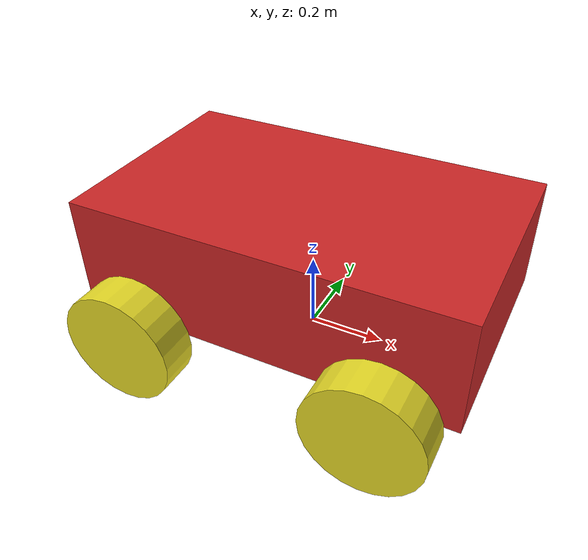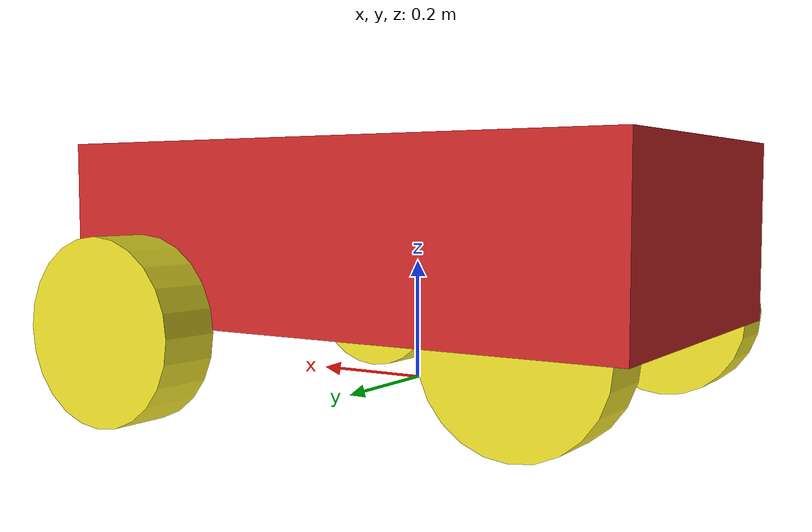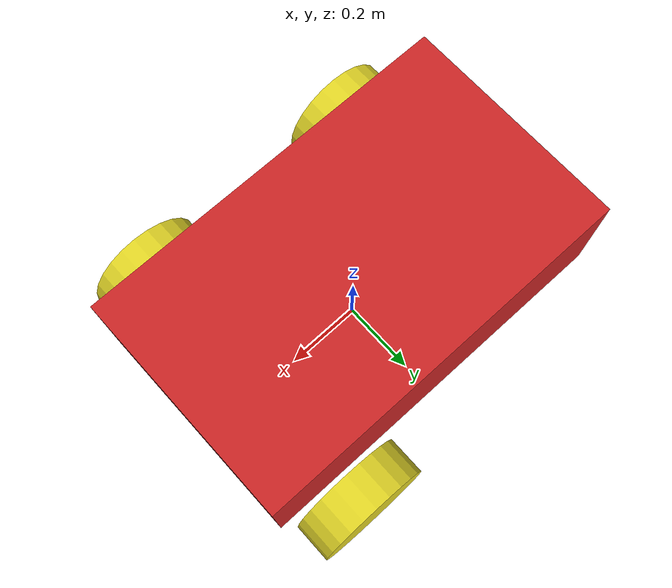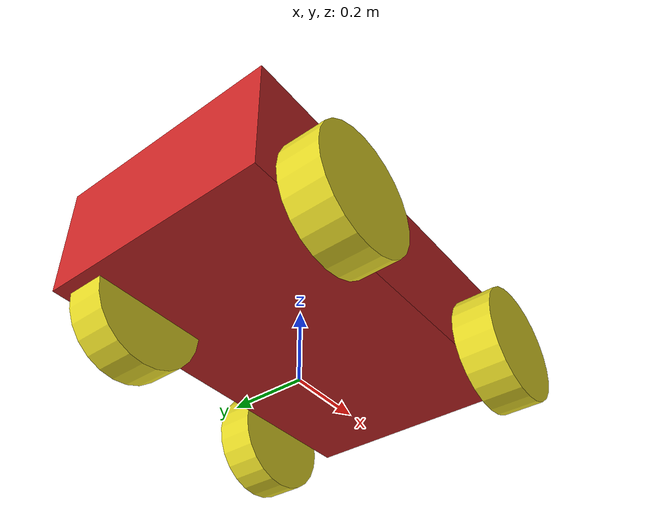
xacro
<?xml version="1.0"?>

<robot name="robot" xmlns:xacro="http://www.ros.org/wiki/xacro">

<!-- Body -->
<xacro:property name="body_link_x_dim" value="1" />
<xacro:property name="body_link_y_dim" value="0.6" />
<xacro:property name="body_link_z_dim" value="0.3" />

<!-- Wheel -->
<xacro:property name="wheel_link_radius" value="0.15" />
<xacro:property name="wheel_link_length" value="0.1" />
<xacro:property name="wheel_link_z_location" value="0.1" />

<!-- Material density -->
<xacro:property name="body_density" value="2710.0" />
<xacro:property name="wheel_density" value="2710.0" />

<!-- Pi constant -->
<xacro:property name="pi_const" value="3.14159265" />

<!-- Robod body and wheel mass -->
<xacro:property name="body_mass" value="${body_density*body_link_x_dim*body_link_y_dim*body_link_z_dim}" />
<xacro:property name="wheel_mass" value="${wheel_density*pi_const*wheel_link_radius*wheel_link_radius*wheel_link_length}" />

<!-- Moment of inertia of the whee -->
<xacro:property name="Iz_wheel" value="${0.5*wheel_mass*wheel_link_radius*wheel_link_radius}" />
<xacro:property name="I_wheel" value="${(-1.0/2.0)*wheel_mass*(2.0*wheel_link_radius*wheel_link_radius+wheel_link_length*wheel_link_length)}" />

<!-- Inertial section of wheel -->
<xacro:macro name="inertia_wheel">
    <inertial>
        <origin rpy="0 0 0" xyz="0 0 0" />
        <mass value="${wheel_mass}" />
        <inertia ixx="${I_wheel}" ixy="0" ixz="0.0" iyy="${I_wheel}" iyz="0" izz="${Iz_wheel}" />
    </inertial>
</xacro:macro>

<xacro:include filename="/home/a/robotics-lab/final-project/robotics-assignment/ros_ws/src/simple_robot_description/models/robot/robot.gazebo.xacro" />

<!-- Link and Joints -->

<link name="dummy"></link>
<joint name="dummy_joint" type='fixed'>
    <parent link="dummy" />
    <child link="body_link" />
</joint>

<link name="body_link">
    <visual>
        <geometry>
            <box size="${body_link_x_dim} ${body_link_y_dim} ${body_link_z_dim}" />
        </geometry>
        <origin rpy="0 0 0" xyz="0 0 0.25" />
    </visual>

    <collision>
        <geometry>
            <box size="${body_link_x_dim} ${body_link_y_dim} ${body_link_z_dim}" />
        </geometry>
        <origin rpy="0 0 0" xyz="0 0 0.25" />
    </collision>

    <inertial>
        <origin rpy="0 0 0" xyz="0 0 0.25" />
        <mass value="${body_mass}" />
        <inertia
        ixx="${(1/12)*body_mass*(body_link_y_dim*body_link_y_dim+body_link_z_dim*body_link_z_dim)}"
        ixy="0"
        ixz="0"
        iyy="${(1/12)*body_mass*(body_link_x_dim*body_link_x_dim+body_link_z_dim*body_link_z_dim)}"
        iyz="0"
        izz="${(1/12)*body_mass*(body_link_y_dim*body_link_y_dim+body_link_x_dim*body_link_x_dim)}"
        />
    </inertial>
</link>

<!-- Back right wheel -->
<joint name="wheel1_joint" type="continuous">
    <parent link="body_link" />
    <child link="wheel1_link" />
    <origin
        xyz="${-body_link_x_dim/2+1.2*wheel_link_radius} ${-body_link_y_dim/2-wheel_link_radius/2} ${wheel_link_z_location}"
        rpy="0 0 0"
    />
    <axis xyz="0 1 0" />
    <limit effort="1000" velocity="1000" />
    <dynamics damping="1.0" friction="1.0" />
</joint>

<link name="wheel1_link">
    <visual>
        <origin rpy="1.570795 0 0" xyz="0 0 0" />
        <geometry>
            <cylinder length="${wheel_link_length}" radius="${wheel_link_radius}" />
        </geometry>
    </visual>

    <collision>
        <origin rpy="1.570795 0 0" xyz="0 0 0" />
        <geometry>
            <cylinder length="${wheel_link_length}" radius="${wheel_link_radius}" />
        </geometry>
    </collision>

    <xacro:inertia_wheel />
</link>

<!-- Back left wheel -->
<joint name="wheel2_joint" type="continuous">
    <parent link="body_link" />
    <child link="wheel2_link" />
    <origin
        xyz="${-body_link_x_dim/2+1.2*wheel_link_radius} ${body_link_y_dim/2-wheel_link_radius/2} ${wheel_link_z_location}"
        rpy="0 0 0"
    />
    <axis xyz="0 1 0" />
    <limit effort="1000" velocity="1000" />
    <dynamics damping="1.0" friction="1.0" />
</joint>

<link name="wheel2_link">
    <visual>
        <origin rpy="1.570795 0 0" xyz="0 0 0" />
        <geometry>
            <cylinder length="${wheel_link_length}" radius="${wheel_link_radius}" />
        </geometry>
    </visual>

    <collision>
        <origin rpy="1.570795 0 0" xyz="0 0 0" />
        <geometry>
            <cylinder length="${wheel_link_length}" radius="${wheel_link_radius}" />
        </geometry>
    </collision>

    <xacro:inertia_wheel />
</link>

<!-- Front right wheel -->
<joint name="wheel3_joint" type="continuous">
    <parent link="body_link" />
    <child link="wheel3_link" />
    <origin
        xyz="${body_link_x_dim/2-1.2*wheel_link_radius} ${-body_link_y_dim/2-wheel_link_radius/2} ${wheel_link_z_location}"
        rpy="0 0 0"
    />
    <axis xyz="0 1 0" />
    <limit effort="1000" velocity="1000" />
    <dynamics damping="1.0" friction="1.0" />
</joint>

<link name="wheel3_link">
    <visual>
        <origin rpy="1.570795 0 0" xyz="0 0 0" />
        <geometry>
            <cylinder length="${wheel_link_length}" radius="${wheel_link_radius}" />
        </geometry>
    </visual>

    <collision>
        <origin rpy="1.570795 0 0" xyz="0 0 0" />
        <geometry>
            <cylinder length="${wheel_link_length}" radius="${wheel_link_radius}" />
        </geometry>
    </collision>

    <xacro:inertia_wheel />
</link>

<!-- Front left wheel -->
<joint name="wheel4_joint" type="continuous">
    <parent link="body_link" />
    <child link="wheel4_link" />
    <origin
        xyz="${body_link_x_dim/2-1.2*wheel_link_radius} ${body_link_y_dim/2+wheel_link_radius/2} ${wheel_link_z_location}"
        rpy="0 0 0"
    />
    <axis xyz="0 1 0" />
    <limit effort="1000" velocity="1000" />
    <dynamics damping="1.0" friction="1.0" />
</joint>

<link name="wheel4_link">
    <visual>
        <origin rpy="1.570795 0 0" xyz="0 0 0" />
        <geometry>
            <cylinder length="${wheel_link_length}" radius="${wheel_link_radius}" />
        </geometry>
    </visual>

    <collision>
        <origin rpy="1.570795 0 0" xyz="0 0 0" />
        <geometry>
            <cylinder length="${wheel_link_length}" radius="${wheel_link_radius}" />
        </geometry>
    </collision>

    <xacro:inertia_wheel />
</link>

</robot>
